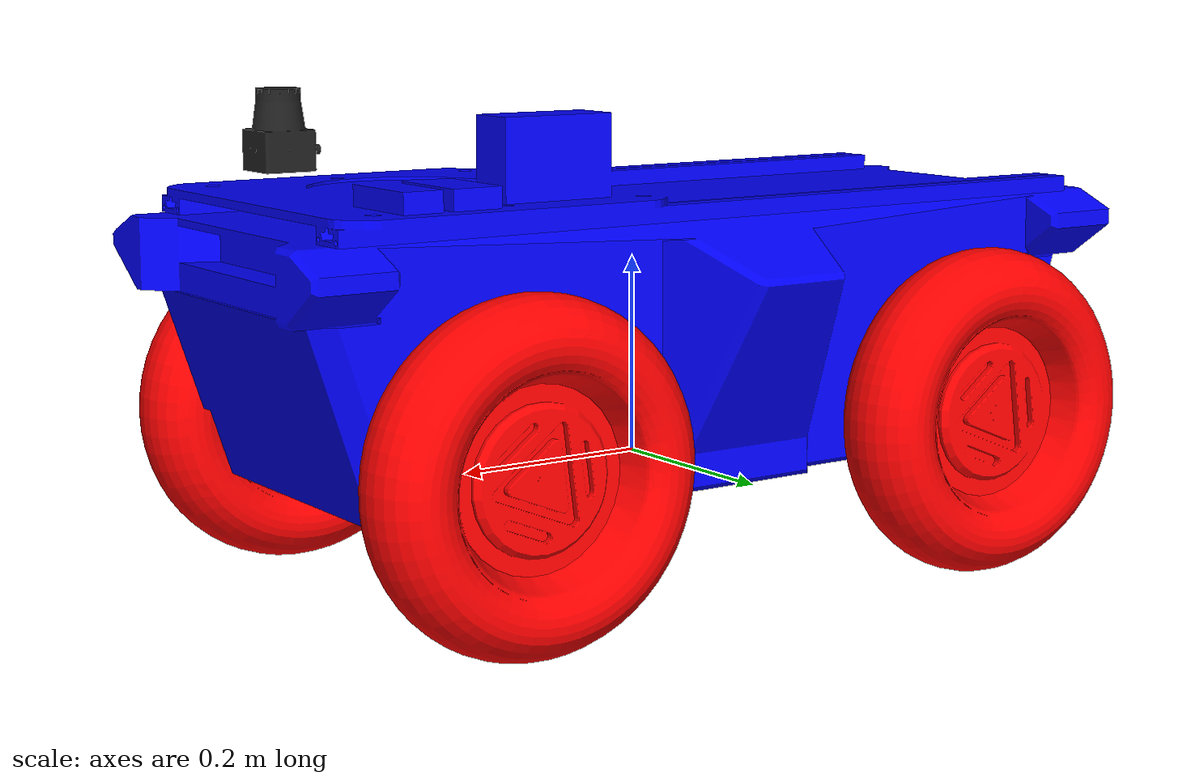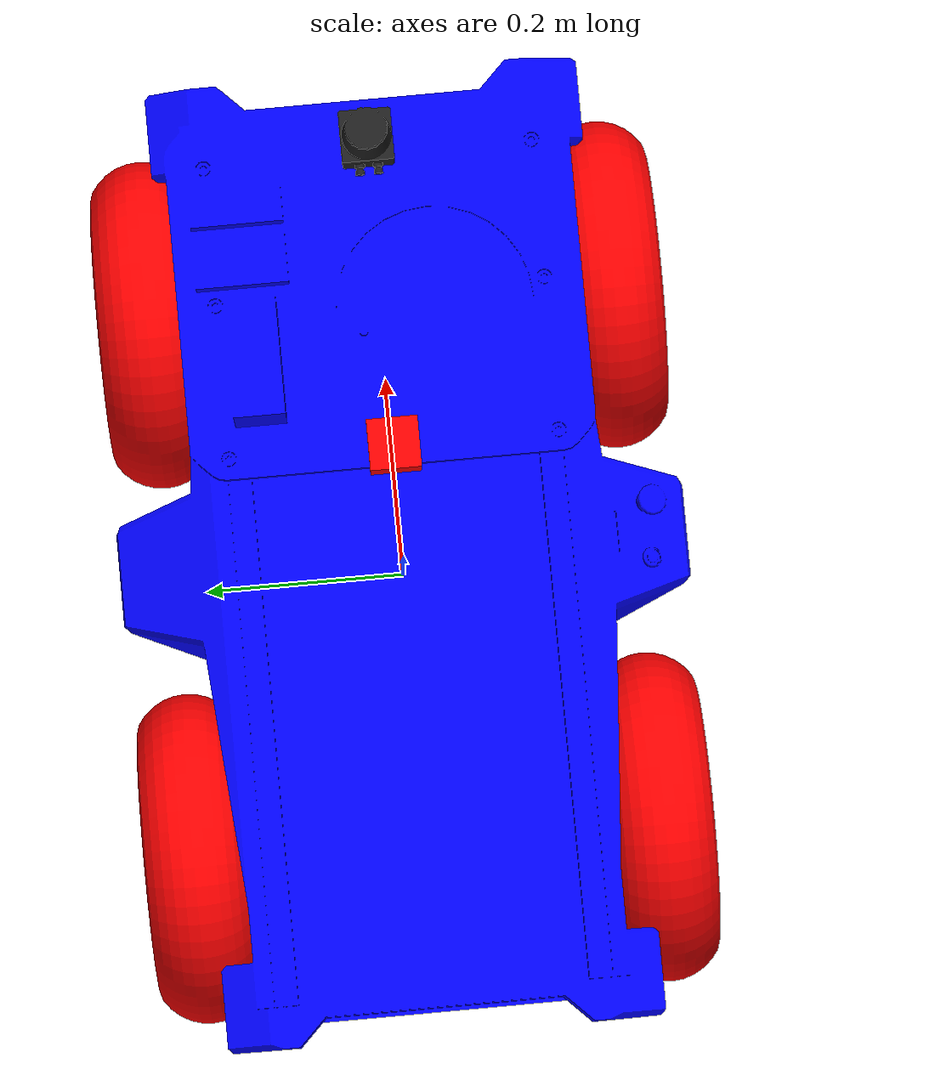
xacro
<?xml version="1.0"?>
<robot name="arm" xmlns:xacro="http://www.ros.org/wiki/xacro">

    <xacro:include filename="$(find caurobot_description)/xacro/caurobot.xacro" />
    <xacro:include filename="$(find  caurobot_description)/xacro/lidar_gazebo.xacro" />

    <xacro:property name="lidar_offset_x" value="0.38" />
    <xacro:property name="lidar_offset_y" value="0" />
    <xacro:property name="lidar_offset_z" value="0.30" />

    <!-- lidar -->
    <joint name="lidar_joint" type="fixed">
        <origin xyz="${lidar_offset_x} ${lidar_offset_y} ${lidar_offset_z}" rpy="0 0 0" />
        <parent link="base_link1"/>
        <child link="laser_link"/>
    </joint>

    <xacro:rplidar/>

    <pacrobot_gazebo/>

</robot>

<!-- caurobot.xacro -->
<!-- This xacro was created by ZZX-->

<robot xmlns:xacro="http://www.ros.org/wiki/xacro"

    xmlns:sensor="http://playerstage.sourceforge.net/gazebo/xmlschema/#sensor"

    xmlns:controller="http://playerstage.sourceforge.net/gazebo/xmlschema/#controller"

    xmlns:interface="http://playerstage.sourceforge.net/gazebo/xmlschema/#interface"

    name="ls_run_robot">
<link
    name="base_link1">
    <inertial>
      <origin
        xyz="0.0046019 0.001076 0.13741"
        rpy="0 0 0" />
      <mass
        value="2000.936" />
      <inertia
        ixx="1.394"
        ixy="-0.0012908"
        ixz="-0.0010527"
        iyy="4.9931"
        iyz="-0.00089468"
        izz="5.5153" />
    </inertial>
    <visual>
      <origin
        xyz="0 0 0"
        rpy="0 0 0" />
      <geometry>
        <mesh
          filename="package://caurobot_description/meshes/base_link.STL" />
      </geometry>
      <material
        name="">
        <color
          rgba="0 0 1 1" />
      </material>
    </visual>
    <collision>
      <origin
        xyz="0 0 0"
        rpy="0 0 0" />
      <geometry>
        <mesh
          filename="package://caurobot_description/meshes/base_link.STL" />
      </geometry>
    </collision>
  </link>
  <link
    name="left_front_link">
    <inertial>
      <origin
        xyz="8.1201E-07 -0.022137 -1.9582E-06"
        rpy="0 0 0" />
      <mass
        value="15.6581" />
      <inertia
        ixx="0.045747"
        ixy="-8.2978E-08"
        ixz="-2.9744E-09"
        iyy="0.084763"
        iyz="2.001E-07"
        izz="0.045747" />
    </inertial>
    <visual>
      <origin
        xyz="0 0 0"
        rpy="0 0 0" />
      <geometry>
        <mesh
          filename="package://caurobot_description/meshes/left_front_link.STL" />
      </geometry>
      <material
        name="">
        <color
          rgba="1 0 0 1" />
      </material>
    </visual>
    <collision>
      <origin
        xyz="0 0 0"
        rpy="0 0 0" />
      <geometry>
        <mesh
          filename="package://caurobot_description/meshes/left_front_link.STL" />
      </geometry>
    </collision>
  </link>
  <joint
    name="left_front_joint"
    type="continuous">
    <origin
      xyz="0.269999999999996 0.251796098814331 0.0480000000000079"
      rpy="0 0 0" />
    <parent
      link="base_link1" />
    <child
      link="left_front_link" />
    <axis
      xyz="0 -1 0" />
  </joint>
  <link
    name="right_front_link">
    <inertial>
      <origin
        xyz="-5.0627E-07 0.022137 -2.0585E-06"
        rpy="0 0 0" />
      <mass
        value="15.6581" />
      <inertia
        ixx="0.045747"
        ixy="-5.1736E-08"
        ixz="1.9495E-09"
        iyy="0.084763"
        iyz="-2.1036E-07"
        izz="0.045747" />
    </inertial>
    <visual>
      <origin
        xyz="0 0 0"
        rpy="0 0 0" />
      <geometry>
        <mesh
          filename="package://caurobot_description/meshes/right_front_link.STL" />
      </geometry>
      <material
        name="">
        <color
          rgba="1 0 0 1" />
      </material>
    </visual>
    <collision>
      <origin
        xyz="0 0 0"
        rpy="0 0 0" />
      <geometry>
        <mesh
          filename="package://caurobot_description/meshes/right_front_link.STL" />
      </geometry>
    </collision>
  </link>
  <joint
    name="right_front_joint"
    type="continuous">
    <origin
      xyz="0.270000000000003 -0.251796098814325 0.0479999999999995"
      rpy="0 0 0" />
    <parent
      link="base_link1" />
    <child
      link="right_front_link" />
    <axis
      xyz="0 1 0" />
  </joint>
  <link
    name="left_back_link">
    <inertial>
      <origin
        xyz="8.1201E-07 -0.022137 -1.9582E-06"
        rpy="0 0 0" />
      <mass
        value="15.6581" />
      <inertia
        ixx="0.045747"
        ixy="-8.2978E-08"
        ixz="-2.9744E-09"
        iyy="0.084763"
        iyz="2.001E-07"
        izz="0.045747" />
    </inertial>
    <visual>
      <origin
        xyz="0 0 0"
        rpy="0 0 0" />
      <geometry>
        <mesh
          filename="package://caurobot_description/meshes/left_back_link.STL" />
      </geometry>
      <material
        name="">
        <color
          rgba="1 0 0 1" />
      </material>
    </visual>
    <collision>
      <origin
        xyz="0 0 0"
        rpy="0 0 0" />
      <geometry>
        <mesh
          filename="package://caurobot_description/meshes/left_back_link.STL" />
      </geometry>
    </collision>
  </link>
  <joint
    name="left_back_joint"
    type="continuous">
    <origin
      xyz="-0.270000000000004 0.251796098814323 0.0480000000000005"
      rpy="0 0 0" />
    <parent
      link="base_link1" />
    <child
      link="left_back_link" />
    <axis
      xyz="0 -1 0" />
  </joint>
  <link
    name="right_back_link">
    <inertial>
      <origin
        xyz="8.1201E-07 0.022137 -1.9582E-06"
        rpy="0 0 0" />
      <mass
        value="15.6581" />
      <inertia
        ixx="0.045747"
        ixy="8.2978E-08"
        ixz="-2.9744E-09"
        iyy="0.084763"
        iyz="-2.001E-07"
        izz="0.045747" />
    </inertial>
    <visual>
      <origin
        xyz="0 0 0"
        rpy="0 0 0" />
      <geometry>
        <mesh
          filename="package://caurobot_description/meshes/right_back_link.STL" />
      </geometry>
      <material
        name="">
        <color
          rgba="1 0 0 1" />
      </material>
    </visual>
    <collision>
      <origin
        xyz="0 0 0"
        rpy="0 0 0" />
      <geometry>
        <mesh
          filename="package://caurobot_description/meshes/right_back_link.STL" />
      </geometry>
    </collision>
  </link>
  <joint
    name="right_back_joint"
    type="continuous">
    <origin
      xyz="-0.269999999999997 -0.251796098814332 0.0479999999999922"
      rpy="0 0 0" />
    <parent
      link="base_link1" />
    <child
      link="right_back_link" />
    <axis
      xyz="0 1 0" />
  </joint>
<gazebo reference="base_link1">
            <material>Gazebo/Yellow</material>
</gazebo>
<gazebo reference="left_front_link">
            <material>Gazebo/Black</material>

</gazebo>

<gazebo reference="right_front_link">
            <material>Gazebo/Black</material>

</gazebo>

<gazebo reference="left_back_link">
            <material>Gazebo/Black</material>

</gazebo>

<gazebo reference="right_back_link">
            <material>Gazebo/Black</material>

</gazebo>

    <xacro:property name="imu_size"     value="0.05" />
    <xacro:property name="imu_m" value="0.01" /> <!-- imu质量 -->
    <xacro:property name="imu_offset_x" value="0.10" />
    <xacro:property name="imu_offset_y" value="0" />
    <xacro:property name="imu_offset_z" value="0.27" />
    <!-- imu -->

    <link name="imu">
        <visual>
            <origin rpy="0 0 0" xyz="0 0 0" />
            <geometry>
                    <box size="${imu_size} ${imu_size} ${imu_size}"/>
            </geometry>
            <material name= "red" >
              <color rgba="1.0 0.0 0.0 1.0" />
            </material>
        </visual>
        <collision>
            <geometry>
                <box size="${imu_size} ${imu_size} ${imu_size}" />
            </geometry>
            <origin xyz="0.0 0.0 0" rpy="0.0 0.0 0.0" />
        </collision>
    </link>
    <joint name="imu_joint" type="fixed">
        <origin xyz="${imu_offset_x} ${imu_offset_y} ${imu_offset_z}" rpy="0 0 0" />
        <parent link="base_link1"/>
        <child link="imu"/>
    </joint>

<!-- Transmission is important to link the joints and the controller -->
        <transmission name="left_front_joint_trans">
            <type>transmission_interface/SimpleTransmission</type>
            <joint name="left_front_joint" >
                <hardwareInterface>hardware_interface/VelocityJointInterface</hardwareInterface>
            </joint>
            <actuator name="left_front_joint_motor">
                <hardwareInterface>hardware_interface/VelocityJointInterface</hardwareInterface>
                <mechanicalReduction>1</mechanicalReduction>
            </actuator>
        </transmission>

<!-- Transmission is important to link the joints and the controller -->
        <transmission name="left_back_joint_trans">
            <type>transmission_interface/SimpleTransmission</type>
            <joint name="left_back_joint" >
                <hardwareInterface>hardware_interface/VelocityJointInterface</hardwareInterface>
            </joint>
            <actuator name="left_back_joint_motor">
                <hardwareInterface>hardware_interface/VelocityJointInterface</hardwareInterface>
                <mechanicalReduction>1</mechanicalReduction>
            </actuator>
        </transmission>

    <!-- Transmission is important to link the joints and the controller -->
        <transmission name="right_front_joint_trans">
            <type>transmission_interface/SimpleTransmission</type>
            <joint name="right_front_joint" >
                <hardwareInterface>hardware_interface/VelocityJointInterface</hardwareInterface>
            </joint>
            <actuator name="right_front_joint_motor">
                <hardwareInterface>hardware_interface/VelocityJointInterface</hardwareInterface>
                <mechanicalReduction>1</mechanicalReduction>
            </actuator>
        </transmission>

    <!-- Transmission is important to link the joints and the controller -->
        <transmission name="right_back_joint_trans">
            <type>transmission_interface/SimpleTransmission</type>
            <joint name="right_back_joint" >
                <hardwareInterface>hardware_interface/VelocityJointInterface</hardwareInterface>
            </joint>
            <actuator name="right_back_joint_motor">
                <hardwareInterface>hardware_interface/VelocityJointInterface</hardwareInterface>
                <mechanicalReduction>1</mechanicalReduction>
            </actuator>
        </transmission>

<!-- controller -->
        <gazebo>
    <plugin name="object_controller" filename="libgazebo_ros_planar_move.so">
      <commandTopic>cmd_vel</commandTopic>
      <odometryTopic>odom</odometryTopic>
      <odometryFrame>odom</odometryFrame>
      <odometryRate>20.0</odometryRate>
      <robotBaseFrame>base_link1</robotBaseFrame>
    </plugin>
  </gazebo>

   <gazebo reference="imu">
        <material>Gazebo/Red</material>
    </gazebo>

    <gazebo reference="imu">
        <gravity>true</gravity>
        <sensor name="imu_sensor" type="imu">
            <always_on>true</always_on>
            <update_rate>100</update_rate>
            <visualize>true</visualize>
            <topic>__default_topic__</topic>
            <plugin filename="libgazebo_ros_imu_sensor.so" name="imu_plugin">
                <topicName>imu_data</topicName>
                <bodyName>imu</bodyName>
                <updateRateHZ>100.0</updateRateHZ>
                <gaussianNoise>0.0</gaussianNoise>
                <xyzOffset>0 0 0</xyzOffset>
                <rpyOffset>0 0 0</rpyOffset>
                <frameName>imu</frameName>
            </plugin>
            <pose>0 0 0 0 0 0</pose>
        </sensor>
    </gazebo>

</robot>

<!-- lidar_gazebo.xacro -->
<robot xmlns:xacro="http://www.ros.org/wiki/xacro" name="laser">

    <xacro:macro name="rplidar" params="prefix:=laser">
        <!-- Create laser reference frame -->
        <link name="${prefix}_link">
            <inertial>
                <mass value="0.1" />
                <origin xyz="0 0 0" />
                <inertia ixx="0.01" ixy="0.0" ixz="0.0"
                         iyy="0.01" iyz="0.0"
                         izz="0.01" />
            </inertial>

            <visual>
                <origin xyz=" 0 0 0 " rpy="0 0 0" />
                <geometry>
                    <!--cylinder length="0.05" radius="0.05"/-->
			<mesh filename="package://caurobot_description/meshes/laser_link.STL" />
                </geometry>
                <material name="black"/>
            </visual>

            <collision>
                <origin xyz="0.0 0.0 0.0" rpy="0 0 0" />
                <geometry>
                    <cylinder length="0.06" radius="0.05"/>
                </geometry>
            </collision>
        </link>
        <gazebo reference="${prefix}_link">
            <material>Gazebo/Black</material>
        </gazebo>

        <gazebo reference="${prefix}_link">
            <sensor type="ray" name="rplidar">
                <pose>0 0 0 0 0 0</pose>
                <visualize>false</visualize>
                <update_rate>5.5</update_rate>
                <ray>
                    <scan>
                      <horizontal>
                        <samples>360</samples>
                        <resolution>1</resolution>
                        <min_angle>-3</min_angle>
                        <max_angle>3</max_angle>
                      </horizontal>
                    </scan>
                    <range>
                      <min>0.80</min>
                      <max>10.00</max>
                      <resolution>0.01</resolution>
                    </range>
                    <noise>
                      <type>gaussian</type>
                      <mean>0.0</mean>
                      <stddev>0.01</stddev>
                    </noise>
                </ray>
                <plugin name="gazebo_rplidar" filename="libgazebo_ros_laser.so">
                    <topicName>/scan</topicName>
                    <frameName>laser_link</frameName>
                </plugin>
            </sensor>
        </gazebo>

    </xacro:macro>
</robot>
